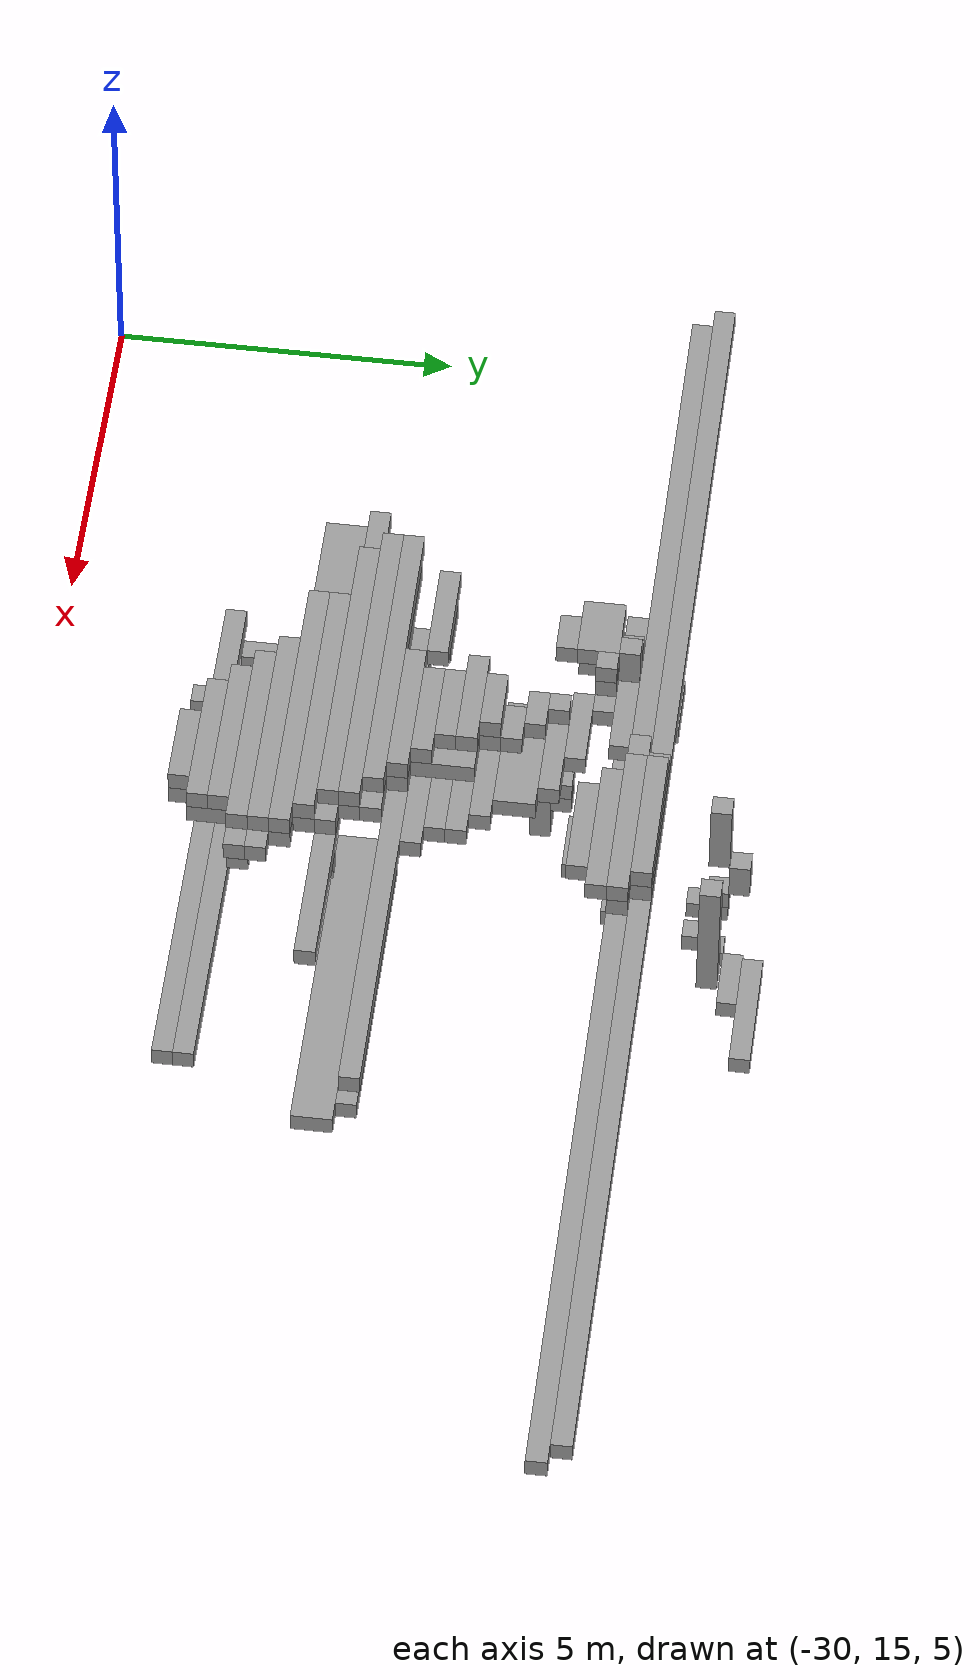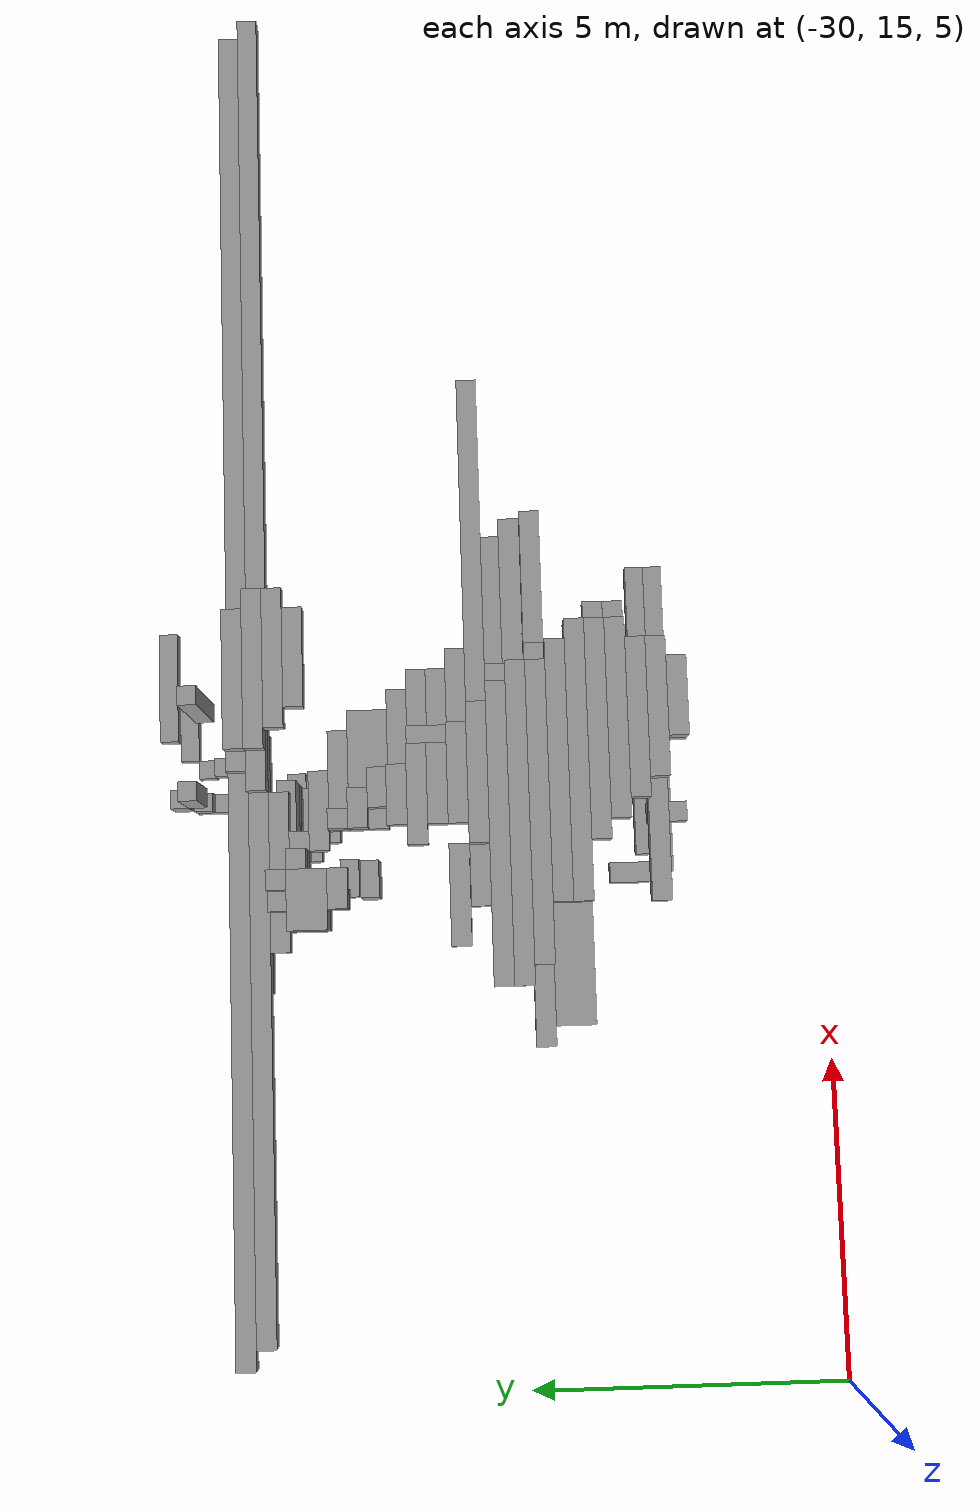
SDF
<sdf version="1.6">
 <world name="bt_world">
  <include><uri>model://sun</uri></include>
  <model name="obstacle_85">
   <static>true</static>
   <pose>-18.9 24.15 7.6499999999999995 0 0 0</pose>
   <link name="link">
    <collision name="collision"><geometry><box><size>20.4 0.3 0.3</size></box></geometry></collision>
    <visual name="visual">
     <geometry><box><size>20.4 0.3 0.3</size></box></geometry>
     <material><ambient>0.5 0.5 0.5 1</ambient><diffuse>0.6 0.6 0.6 1</diffuse></material>
    </visual>
   </link>
  </model>
  <model name="obstacle_109">
   <static>true</static>
   <pose>-18.599999999999998 23.849999999999998 7.6499999999999995 0 0 0</pose>
   <link name="link">
    <collision name="collision"><geometry><box><size>20.4 0.3 0.3</size></box></geometry></collision>
    <visual name="visual">
     <geometry><box><size>20.4 0.3 0.3</size></box></geometry>
     <material><ambient>0.5 0.5 0.5 1</ambient><diffuse>0.6 0.6 0.6 1</diffuse></material>
    </visual>
   </link>
  </model>
  <model name="obstacle_365">
   <static>true</static>
   <pose>-20.55 19.65 7.6499999999999995 0 0 0</pose>
   <link name="link">
    <collision name="collision"><geometry><box><size>8.1 0.3 0.3</size></box></geometry></collision>
    <visual name="visual">
     <geometry><box><size>8.1 0.3 0.3</size></box></geometry>
     <material><ambient>0.5 0.5 0.5 1</ambient><diffuse>0.6 0.6 0.6 1</diffuse></material>
    </visual>
   </link>
  </model>
  <model name="obstacle_397">
   <static>true</static>
   <pose>-21.9 19.2 7.6499999999999995 0 0 0</pose>
   <link name="link">
    <collision name="collision"><geometry><box><size>4.8 0.6 0.3</size></box></geometry></collision>
    <visual name="visual">
     <geometry><box><size>4.8 0.6 0.3</size></box></geometry>
     <material><ambient>0.5 0.5 0.5 1</ambient><diffuse>0.6 0.6 0.6 1</diffuse></material>
    </visual>
   </link>
  </model>
  <model name="obstacle_461">
   <static>true</static>
   <pose>-21.3 19.95 8.25 0 0 0</pose>
   <link name="link">
    <collision name="collision"><geometry><box><size>4.8 0.3 0.3</size></box></geometry></collision>
    <visual name="visual">
     <geometry><box><size>4.8 0.3 0.3</size></box></geometry>
     <material><ambient>0.5 0.5 0.5 1</ambient><diffuse>0.6 0.6 0.6 1</diffuse></material>
    </visual>
   </link>
  </model>
  <model name="obstacle_462">
   <static>true</static>
   <pose>-21.45 20.25 8.25 0 0 0</pose>
   <link name="link">
    <collision name="collision"><geometry><box><size>4.5 0.3 0.3</size></box></geometry></collision>
    <visual name="visual">
     <geometry><box><size>4.5 0.3 0.3</size></box></geometry>
     <material><ambient>0.5 0.5 0.5 1</ambient><diffuse>0.6 0.6 0.6 1</diffuse></material>
    </visual>
   </link>
  </model>
  <model name="obstacle_467">
   <static>true</static>
   <pose>-21.75 23.849999999999998 7.35 0 0 0</pose>
   <link name="link">
    <collision name="collision"><geometry><box><size>3.9 0.3 0.3</size></box></geometry></collision>
    <visual name="visual">
     <geometry><box><size>3.9 0.3 0.3</size></box></geometry>
     <material><ambient>0.5 0.5 0.5 1</ambient><diffuse>0.6 0.6 0.6 1</diffuse></material>
    </visual>
   </link>
  </model>
  <model name="obstacle_495">
   <static>true</static>
   <pose>-21.15 19.65 8.25 0 0 0</pose>
   <link name="link">
    <collision name="collision"><geometry><box><size>4.5 0.3 0.3</size></box></geometry></collision>
    <visual name="visual">
     <geometry><box><size>4.5 0.3 0.3</size></box></geometry>
     <material><ambient>0.5 0.5 0.5 1</ambient><diffuse>0.6 0.6 0.6 1</diffuse></material>
    </visual>
   </link>
  </model>
  <model name="obstacle_497">
   <static>true</static>
   <pose>-21.15 20.25 7.949999999999999 0 0 0</pose>
   <link name="link">
    <collision name="collision"><geometry><box><size>4.5 0.3 0.3</size></box></geometry></collision>
    <visual name="visual">
     <geometry><box><size>4.5 0.3 0.3</size></box></geometry>
     <material><ambient>0.5 0.5 0.5 1</ambient><diffuse>0.6 0.6 0.6 1</diffuse></material>
    </visual>
   </link>
  </model>
  <model name="obstacle_527">
   <static>true</static>
   <pose>-22.349999999999998 20.849999999999998 8.25 0 0 0</pose>
   <link name="link">
    <collision name="collision"><geometry><box><size>1.5 0.3 0.3</size></box></geometry></collision>
    <visual name="visual">
     <geometry><box><size>1.5 0.3 0.3</size></box></geometry>
     <material><ambient>0.5 0.5 0.5 1</ambient><diffuse>0.6 0.6 0.6 1</diffuse></material>
    </visual>
   </link>
  </model>
  <model name="obstacle_532">
   <static>true</static>
   <pose>-21.9 23.55 7.6499999999999995 0 0 0</pose>
   <link name="link">
    <collision name="collision"><geometry><box><size>2.4 0.3 0.3</size></box></geometry></collision>
    <visual name="visual">
     <geometry><box><size>2.4 0.3 0.3</size></box></geometry>
     <material><ambient>0.5 0.5 0.5 1</ambient><diffuse>0.6 0.6 0.6 1</diffuse></material>
    </visual>
   </link>
  </model>
  <model name="obstacle_561">
   <static>true</static>
   <pose>-22.349999999999998 20.849999999999998 7.949999999999999 0 0 0</pose>
   <link name="link">
    <collision name="collision">
     <geometry><box><size>0.8999999999999999 0.3 0.3</size></box></geometry>
    </collision>
    <visual name="visual">
     <geometry><box><size>0.8999999999999999 0.3 0.3</size></box></geometry>
     <material><ambient>0.5 0.5 0.5 1</ambient><diffuse>0.6 0.6 0.6 1</diffuse></material>
    </visual>
   </link>
  </model>
  <model name="obstacle_563">
   <static>true</static>
   <pose>-22.5 23.099999999999998 7.6499999999999995 0 0 0</pose>
   <link name="link">
    <collision name="collision"><geometry><box><size>0.6 0.6 0.3</size></box></geometry></collision>
    <visual name="visual">
     <geometry><box><size>0.6 0.6 0.3</size></box></geometry>
     <material><ambient>0.5 0.5 0.5 1</ambient><diffuse>0.6 0.6 0.6 1</diffuse></material>
    </visual>
   </link>
  </model>
  <model name="obstacle_564">
   <static>true</static>
   <pose>-22.349999999999998 23.099999999999998 8.25 0 0 0</pose>
   <link name="link">
    <collision name="collision">
     <geometry><box><size>0.8999999999999999 0.6 0.3</size></box></geometry>
    </collision>
    <visual name="visual">
     <geometry><box><size>0.8999999999999999 0.6 0.3</size></box></geometry>
     <material><ambient>0.5 0.5 0.5 1</ambient><diffuse>0.6 0.6 0.6 1</diffuse></material>
    </visual>
   </link>
  </model>
  <model name="obstacle_565">
   <static>true</static>
   <pose>-22.05 23.849999999999998 7.05 0 0 0</pose>
   <link name="link">
    <collision name="collision"><geometry><box><size>1.5 0.3 0.3</size></box></geometry></collision>
    <visual name="visual">
     <geometry><box><size>1.5 0.3 0.3</size></box></geometry>
     <material><ambient>0.5 0.5 0.5 1</ambient><diffuse>0.6 0.6 0.6 1</diffuse></material>
    </visual>
   </link>
  </model>
  <model name="obstacle_595">
   <static>true</static>
   <pose>-20.7 17.849999999999998 7.6499999999999995 0 0 0</pose>
   <link name="link">
    <collision name="collision">
     <geometry><box><size>3.5999999999999996 0.3 0.3</size></box></geometry>
    </collision>
    <visual name="visual">
     <geometry><box><size>3.5999999999999996 0.3 0.3</size></box></geometry>
     <material><ambient>0.5 0.5 0.5 1</ambient><diffuse>0.6 0.6 0.6 1</diffuse></material>
    </visual>
   </link>
  </model>
  <model name="obstacle_596">
   <static>true</static>
   <pose>-20.4 19.05 8.25 0 0 0</pose>
   <link name="link">
    <collision name="collision"><geometry><box><size>4.2 0.3 0.3</size></box></geometry></collision>
    <visual name="visual">
     <geometry><box><size>4.2 0.3 0.3</size></box></geometry>
     <material><ambient>0.5 0.5 0.5 1</ambient><diffuse>0.6 0.6 0.6 1</diffuse></material>
    </visual>
   </link>
  </model>
  <model name="obstacle_597">
   <static>true</static>
   <pose>-20.55 19.349999999999998 8.25 0 0 0</pose>
   <link name="link">
    <collision name="collision"><geometry><box><size>3.9 0.3 0.3</size></box></geometry></collision>
    <visual name="visual">
     <geometry><box><size>3.9 0.3 0.3</size></box></geometry>
     <material><ambient>0.5 0.5 0.5 1</ambient><diffuse>0.6 0.6 0.6 1</diffuse></material>
    </visual>
   </link>
  </model>
  <model name="obstacle_598">
   <static>true</static>
   <pose>-18.45 20.55 7.6499999999999995 0 0 0</pose>
   <link name="link">
    <collision name="collision"><geometry><box><size>8.1 0.3 0.3</size></box></geometry></collision>
    <visual name="visual">
     <geometry><box><size>8.1 0.3 0.3</size></box></geometry>
     <material><ambient>0.5 0.5 0.5 1</ambient><diffuse>0.6 0.6 0.6 1</diffuse></material>
    </visual>
   </link>
  </model>
  <model name="obstacle_599">
   <static>true</static>
   <pose>-22.349999999999998 23.099999999999998 7.949999999999999 0 0 0</pose>
   <link name="link">
    <collision name="collision"><geometry><box><size>0.3 1.2 0.3</size></box></geometry></collision>
    <visual name="visual">
     <geometry><box><size>0.3 1.2 0.3</size></box></geometry>
     <material><ambient>0.5 0.5 0.5 1</ambient><diffuse>0.6 0.6 0.6 1</diffuse></material>
    </visual>
   </link>
  </model>
  <model name="obstacle_600">
   <static>true</static>
   <pose>-22.2 22.65 8.25 0 0 0</pose>
   <link name="link">
    <collision name="collision"><geometry><box><size>0.6 0.3 0.3</size></box></geometry></collision>
    <visual name="visual">
     <geometry><box><size>0.6 0.3 0.3</size></box></geometry>
     <material><ambient>0.5 0.5 0.5 1</ambient><diffuse>0.6 0.6 0.6 1</diffuse></material>
    </visual>
   </link>
  </model>
  <model name="obstacle_601">
   <static>true</static>
   <pose>-21.45 23.55 5.85 0 0 0</pose>
   <link name="link">
    <collision name="collision"><geometry><box><size>2.1 0.3 0.3</size></box></geometry></collision>
    <visual name="visual">
     <geometry><box><size>2.1 0.3 0.3</size></box></geometry>
     <material><ambient>0.5 0.5 0.5 1</ambient><diffuse>0.6 0.6 0.6 1</diffuse></material>
    </visual>
   </link>
  </model>
  <model name="obstacle_602">
   <static>true</static>
   <pose>-22.349999999999998 23.55 6.1499999999999995 0 0 0</pose>
   <link name="link">
    <collision name="collision"><geometry><box><size>0.3 0.3 0.3</size></box></geometry></collision>
    <visual name="visual">
     <geometry><box><size>0.3 0.3 0.3</size></box></geometry>
     <material><ambient>0.5 0.5 0.5 1</ambient><diffuse>0.6 0.6 0.6 1</diffuse></material>
    </visual>
   </link>
  </model>
  <model name="obstacle_603">
   <static>true</static>
   <pose>-22.05 24.15 7.05 0 0 0</pose>
   <link name="link">
    <collision name="collision">
     <geometry><box><size>0.8999999999999999 0.3 0.3</size></box></geometry>
    </collision>
    <visual name="visual">
     <geometry><box><size>0.8999999999999999 0.3 0.3</size></box></geometry>
     <material><ambient>0.5 0.5 0.5 1</ambient><diffuse>0.6 0.6 0.6 1</diffuse></material>
    </visual>
   </link>
  </model>
  <model name="obstacle_659">
   <static>true</static>
   <pose>-22.05 18.3 7.35 0 0 0</pose>
   <link name="link">
    <collision name="collision"><geometry><box><size>0.3 0.6 0.3</size></box></geometry></collision>
    <visual name="visual">
     <geometry><box><size>0.3 0.6 0.3</size></box></geometry>
     <material><ambient>0.5 0.5 0.5 1</ambient><diffuse>0.6 0.6 0.6 1</diffuse></material>
    </visual>
   </link>
  </model>
  <model name="obstacle_660">
   <static>true</static>
   <pose>-22.05 19.5 7.35 0 0 0</pose>
   <link name="link">
    <collision name="collision"><geometry><box><size>0.3 0.6 0.3</size></box></geometry></collision>
    <visual name="visual">
     <geometry><box><size>0.3 0.6 0.3</size></box></geometry>
     <material><ambient>0.5 0.5 0.5 1</ambient><diffuse>0.6 0.6 0.6 1</diffuse></material>
    </visual>
   </link>
  </model>
  <model name="obstacle_661">
   <static>true</static>
   <pose>-21.9 22.349999999999998 4.95 0 0 0</pose>
   <link name="link">
    <collision name="collision">
     <geometry><box><size>0.6 0.3 0.8999999999999999</size></box></geometry>
    </collision>
    <visual name="visual">
     <geometry><box><size>0.6 0.3 0.8999999999999999</size></box></geometry>
     <material><ambient>0.5 0.5 0.5 1</ambient><diffuse>0.6 0.6 0.6 1</diffuse></material>
    </visual>
   </link>
  </model>
  <model name="obstacle_662">
   <static>true</static>
   <pose>-21.9 22.65 5.55 0 0 0</pose>
   <link name="link">
    <collision name="collision"><geometry><box><size>0.6 0.3 0.3</size></box></geometry></collision>
    <visual name="visual">
     <geometry><box><size>0.6 0.3 0.3</size></box></geometry>
     <material><ambient>0.5 0.5 0.5 1</ambient><diffuse>0.6 0.6 0.6 1</diffuse></material>
    </visual>
   </link>
  </model>
  <model name="obstacle_663">
   <static>true</static>
   <pose>-21.75 23.25 7.6499999999999995 0 0 0</pose>
   <link name="link">
    <collision name="collision">
     <geometry><box><size>0.8999999999999999 0.3 0.3</size></box></geometry>
    </collision>
    <visual name="visual">
     <geometry><box><size>0.8999999999999999 0.3 0.3</size></box></geometry>
     <material><ambient>0.5 0.5 0.5 1</ambient><diffuse>0.6 0.6 0.6 1</diffuse></material>
    </visual>
   </link>
  </model>
  <model name="obstacle_664">
   <static>true</static>
   <pose>-21.9 23.25 7.949999999999999 0 0 0</pose>
   <link name="link">
    <collision name="collision"><geometry><box><size>0.6 0.3 0.3</size></box></geometry></collision>
    <visual name="visual">
     <geometry><box><size>0.6 0.3 0.3</size></box></geometry>
     <material><ambient>0.5 0.5 0.5 1</ambient><diffuse>0.6 0.6 0.6 1</diffuse></material>
    </visual>
   </link>
  </model>
  <model name="obstacle_665">
   <static>true</static>
   <pose>-21.75 23.55 5.1 0 0 0</pose>
   <link name="link">
    <collision name="collision">
     <geometry><box><size>0.8999999999999999 0.3 1.2</size></box></geometry>
    </collision>
    <visual name="visual">
     <geometry><box><size>0.8999999999999999 0.3 1.2</size></box></geometry>
     <material><ambient>0.5 0.5 0.5 1</ambient><diffuse>0.6 0.6 0.6 1</diffuse></material>
    </visual>
   </link>
  </model>
  <model name="obstacle_666">
   <static>true</static>
   <pose>-22.05 23.55 8.1 0 0 0</pose>
   <link name="link">
    <collision name="collision"><geometry><box><size>0.3 0.3 0.6</size></box></geometry></collision>
    <visual name="visual">
     <geometry><box><size>0.3 0.3 0.6</size></box></geometry>
     <material><ambient>0.5 0.5 0.5 1</ambient><diffuse>0.6 0.6 0.6 1</diffuse></material>
    </visual>
   </link>
  </model>
  <model name="obstacle_703">
   <static>true</static>
   <pose>-19.349999999999998 17.55 4.6499999999999995 0 0 0</pose>
   <link name="link">
    <collision name="collision"><geometry><box><size>5.1 0.3 0.3</size></box></geometry></collision>
    <visual name="visual">
     <geometry><box><size>5.1 0.3 0.3</size></box></geometry>
     <material><ambient>0.5 0.5 0.5 1</ambient><diffuse>0.6 0.6 0.6 1</diffuse></material>
    </visual>
   </link>
  </model>
  <model name="obstacle_704">
   <static>true</static>
   <pose>-21.75 22.65 5.25 0 0 0</pose>
   <link name="link">
    <collision name="collision"><geometry><box><size>0.3 0.3 0.3</size></box></geometry></collision>
    <visual name="visual">
     <geometry><box><size>0.3 0.3 0.3</size></box></geometry>
     <material><ambient>0.5 0.5 0.5 1</ambient><diffuse>0.6 0.6 0.6 1</diffuse></material>
    </visual>
   </link>
  </model>
  <model name="obstacle_705">
   <static>true</static>
   <pose>-21.75 23.25 8.25 0 0 0</pose>
   <link name="link">
    <collision name="collision"><geometry><box><size>0.3 0.3 0.3</size></box></geometry></collision>
    <visual name="visual">
     <geometry><box><size>0.3 0.3 0.3</size></box></geometry>
     <material><ambient>0.5 0.5 0.5 1</ambient><diffuse>0.6 0.6 0.6 1</diffuse></material>
    </visual>
   </link>
  </model>
  <model name="obstacle_740">
   <static>true</static>
   <pose>-19.2 17.849999999999998 4.6499999999999995 0 0 0</pose>
   <link name="link">
    <collision name="collision"><geometry><box><size>4.8 0.3 0.3</size></box></geometry></collision>
    <visual name="visual">
     <geometry><box><size>4.8 0.3 0.3</size></box></geometry>
     <material><ambient>0.5 0.5 0.5 1</ambient><diffuse>0.6 0.6 0.6 1</diffuse></material>
    </visual>
   </link>
  </model>
  <model name="obstacle_741">
   <static>true</static>
   <pose>-19.95 18.75 8.25 0 0 0</pose>
   <link name="link">
    <collision name="collision"><geometry><box><size>3.3 0.3 0.3</size></box></geometry></collision>
    <visual name="visual">
     <geometry><box><size>3.3 0.3 0.3</size></box></geometry>
     <material><ambient>0.5 0.5 0.5 1</ambient><diffuse>0.6 0.6 0.6 1</diffuse></material>
    </visual>
   </link>
  </model>
  <model name="obstacle_742">
   <static>true</static>
   <pose>-21.3 20.25 7.35 0 0 0</pose>
   <link name="link">
    <collision name="collision"><geometry><box><size>0.6 0.3 0.3</size></box></geometry></collision>
    <visual name="visual">
     <geometry><box><size>0.6 0.3 0.3</size></box></geometry>
     <material><ambient>0.5 0.5 0.5 1</ambient><diffuse>0.6 0.6 0.6 1</diffuse></material>
    </visual>
   </link>
  </model>
  <model name="obstacle_743">
   <static>true</static>
   <pose>-20.55 20.55 8.25 0 0 0</pose>
   <link name="link">
    <collision name="collision"><geometry><box><size>2.1 0.3 0.3</size></box></geometry></collision>
    <visual name="visual">
     <geometry><box><size>2.1 0.3 0.3</size></box></geometry>
     <material><ambient>0.5 0.5 0.5 1</ambient><diffuse>0.6 0.6 0.6 1</diffuse></material>
    </visual>
   </link>
  </model>
  <model name="obstacle_744">
   <static>true</static>
   <pose>-20.849999999999998 21.45 8.25 0 0 0</pose>
   <link name="link">
    <collision name="collision"><geometry><box><size>1.5 0.3 0.3</size></box></geometry></collision>
    <visual name="visual">
     <geometry><box><size>1.5 0.3 0.3</size></box></geometry>
     <material><ambient>0.5 0.5 0.5 1</ambient><diffuse>0.6 0.6 0.6 1</diffuse></material>
    </visual>
   </link>
  </model>
  <model name="obstacle_745">
   <static>true</static>
   <pose>-21.0 22.95 7.6499999999999995 0 0 0</pose>
   <link name="link">
    <collision name="collision"><geometry><box><size>1.2 0.3 0.3</size></box></geometry></collision>
    <visual name="visual">
     <geometry><box><size>1.2 0.3 0.3</size></box></geometry>
     <material><ambient>0.5 0.5 0.5 1</ambient><diffuse>0.6 0.6 0.6 1</diffuse></material>
    </visual>
   </link>
  </model>
  <model name="obstacle_746">
   <static>true</static>
   <pose>-21.0 23.25 5.25 0 0 0</pose>
   <link name="link">
    <collision name="collision"><geometry><box><size>1.2 0.3 0.3</size></box></geometry></collision>
    <visual name="visual">
     <geometry><box><size>1.2 0.3 0.3</size></box></geometry>
     <material><ambient>0.5 0.5 0.5 1</ambient><diffuse>0.6 0.6 0.6 1</diffuse></material>
    </visual>
   </link>
  </model>
  <model name="obstacle_747">
   <static>true</static>
   <pose>-21.0 23.55 6.3 0 0 0</pose>
   <link name="link">
    <collision name="collision"><geometry><box><size>1.2 0.3 0.6</size></box></geometry></collision>
    <visual name="visual">
     <geometry><box><size>1.2 0.3 0.6</size></box></geometry>
     <material><ambient>0.5 0.5 0.5 1</ambient><diffuse>0.6 0.6 0.6 1</diffuse></material>
    </visual>
   </link>
  </model>
  <model name="obstacle_797">
   <static>true</static>
   <pose>-21.15 17.7 7.35 0 0 0</pose>
   <link name="link">
    <collision name="collision"><geometry><box><size>0.3 0.6 0.3</size></box></geometry></collision>
    <visual name="visual">
     <geometry><box><size>0.3 0.6 0.3</size></box></geometry>
     <material><ambient>0.5 0.5 0.5 1</ambient><diffuse>0.6 0.6 0.6 1</diffuse></material>
    </visual>
   </link>
  </model>
  <model name="obstacle_798">
   <static>true</static>
   <pose>-19.8 18.45 8.25 0 0 0</pose>
   <link name="link">
    <collision name="collision"><geometry><box><size>3.0 0.3 0.3</size></box></geometry></collision>
    <visual name="visual">
     <geometry><box><size>3.0 0.3 0.3</size></box></geometry>
     <material><ambient>0.5 0.5 0.5 1</ambient><diffuse>0.6 0.6 0.6 1</diffuse></material>
    </visual>
   </link>
  </model>
  <model name="obstacle_799">
   <static>true</static>
   <pose>-21.15 19.95 7.949999999999999 0 0 0</pose>
   <link name="link">
    <collision name="collision"><geometry><box><size>0.3 0.3 0.3</size></box></geometry></collision>
    <visual name="visual">
     <geometry><box><size>0.3 0.3 0.3</size></box></geometry>
     <material><ambient>0.5 0.5 0.5 1</ambient><diffuse>0.6 0.6 0.6 1</diffuse></material>
    </visual>
   </link>
  </model>
  <model name="obstacle_800">
   <static>true</static>
   <pose>-21.15 20.55 7.35 0 0 0</pose>
   <link name="link">
    <collision name="collision"><geometry><box><size>0.3 0.3 0.3</size></box></geometry></collision>
    <visual name="visual">
     <geometry><box><size>0.3 0.3 0.3</size></box></geometry>
     <material><ambient>0.5 0.5 0.5 1</ambient><diffuse>0.6 0.6 0.6 1</diffuse></material>
    </visual>
   </link>
  </model>
  <model name="obstacle_801">
   <static>true</static>
   <pose>-20.4 20.55 7.949999999999999 0 0 0</pose>
   <link name="link">
    <collision name="collision">
     <geometry><box><size>1.7999999999999998 0.3 0.3</size></box></geometry>
    </collision>
    <visual name="visual">
     <geometry><box><size>1.7999999999999998 0.3 0.3</size></box></geometry>
     <material><ambient>0.5 0.5 0.5 1</ambient><diffuse>0.6 0.6 0.6 1</diffuse></material>
    </visual>
   </link>
  </model>
  <model name="obstacle_802">
   <static>true</static>
   <pose>-20.55 20.849999999999998 8.25 0 0 0</pose>
   <link name="link">
    <collision name="collision"><geometry><box><size>1.5 0.3 0.3</size></box></geometry></collision>
    <visual name="visual">
     <geometry><box><size>1.5 0.3 0.3</size></box></geometry>
     <material><ambient>0.5 0.5 0.5 1</ambient><diffuse>0.6 0.6 0.6 1</diffuse></material>
    </visual>
   </link>
  </model>
  <model name="obstacle_803">
   <static>true</static>
   <pose>-20.7 21.15 8.25 0 0 0</pose>
   <link name="link">
    <collision name="collision"><geometry><box><size>1.2 0.3 0.3</size></box></geometry></collision>
    <visual name="visual">
     <geometry><box><size>1.2 0.3 0.3</size></box></geometry>
     <material><ambient>0.5 0.5 0.5 1</ambient><diffuse>0.6 0.6 0.6 1</diffuse></material>
    </visual>
   </link>
  </model>
  <model name="obstacle_804">
   <static>true</static>
   <pose>-20.849999999999998 21.75 8.25 0 0 0</pose>
   <link name="link">
    <collision name="collision">
     <geometry><box><size>0.8999999999999999 0.3 0.3</size></box></geometry>
    </collision>
    <visual name="visual">
     <geometry><box><size>0.8999999999999999 0.3 0.3</size></box></geometry>
     <material><ambient>0.5 0.5 0.5 1</ambient><diffuse>0.6 0.6 0.6 1</diffuse></material>
    </visual>
   </link>
  </model>
  <model name="obstacle_805">
   <static>true</static>
   <pose>-20.4 22.2 7.6499999999999995 0 0 0</pose>
   <link name="link">
    <collision name="collision">
     <geometry><box><size>1.7999999999999998 0.6 0.3</size></box></geometry>
    </collision>
    <visual name="visual">
     <geometry><box><size>1.7999999999999998 0.6 0.3</size></box></geometry>
     <material><ambient>0.5 0.5 0.5 1</ambient><diffuse>0.6 0.6 0.6 1</diffuse></material>
    </visual>
   </link>
  </model>
  <model name="obstacle_806">
   <static>true</static>
   <pose>-21.0 22.349999999999998 7.949999999999999 0 0 0</pose>
   <link name="link">
    <collision name="collision"><geometry><box><size>0.6 0.3 0.3</size></box></geometry></collision>
    <visual name="visual">
     <geometry><box><size>0.6 0.3 0.3</size></box></geometry>
     <material><ambient>0.5 0.5 0.5 1</ambient><diffuse>0.6 0.6 0.6 1</diffuse></material>
    </visual>
   </link>
  </model>
  <model name="obstacle_807">
   <static>true</static>
   <pose>-20.55 22.65 7.6499999999999995 0 0 0</pose>
   <link name="link">
    <collision name="collision"><geometry><box><size>1.5 0.3 0.3</size></box></geometry></collision>
    <visual name="visual">
     <geometry><box><size>1.5 0.3 0.3</size></box></geometry>
     <material><ambient>0.5 0.5 0.5 1</ambient><diffuse>0.6 0.6 0.6 1</diffuse></material>
    </visual>
   </link>
  </model>
  <model name="obstacle_808">
   <static>true</static>
   <pose>-21.15 22.65 7.949999999999999 0 0 0</pose>
   <link name="link">
    <collision name="collision"><geometry><box><size>0.3 0.3 0.3</size></box></geometry></collision>
    <visual name="visual">
     <geometry><box><size>0.3 0.3 0.3</size></box></geometry>
     <material><ambient>0.5 0.5 0.5 1</ambient><diffuse>0.6 0.6 0.6 1</diffuse></material>
    </visual>
   </link>
  </model>
  <model name="obstacle_809">
   <static>true</static>
   <pose>-20.849999999999998 22.95 5.25 0 0 0</pose>
   <link name="link">
    <collision name="collision">
     <geometry><box><size>0.8999999999999999 0.3 0.3</size></box></geometry>
    </collision>
    <visual name="visual">
     <geometry><box><size>0.8999999999999999 0.3 0.3</size></box></geometry>
     <material><ambient>0.5 0.5 0.5 1</ambient><diffuse>0.6 0.6 0.6 1</diffuse></material>
    </visual>
   </link>
  </model>
  <model name="obstacle_810">
   <static>true</static>
   <pose>-21.15 23.55 5.25 0 0 0</pose>
   <link name="link">
    <collision name="collision">
     <geometry><box><size>0.3 0.3 0.8999999999999999</size></box></geometry>
    </collision>
    <visual name="visual">
     <geometry><box><size>0.3 0.3 0.8999999999999999</size></box></geometry>
     <material><ambient>0.5 0.5 0.5 1</ambient><diffuse>0.6 0.6 0.6 1</diffuse></material>
    </visual>
   </link>
  </model>
  <model name="obstacle_845">
   <static>true</static>
   <pose>-19.8 18.15 8.25 0 0 0</pose>
   <link name="link">
    <collision name="collision"><geometry><box><size>2.4 0.3 0.3</size></box></geometry></collision>
    <visual name="visual">
     <geometry><box><size>2.4 0.3 0.3</size></box></geometry>
     <material><ambient>0.5 0.5 0.5 1</ambient><diffuse>0.6 0.6 0.6 1</diffuse></material>
    </visual>
   </link>
  </model>
  <model name="obstacle_846">
   <static>true</static>
   <pose>-20.849999999999998 18.45 7.35 0 0 0</pose>
   <link name="link">
    <collision name="collision"><geometry><box><size>0.3 0.3 0.3</size></box></geometry></collision>
    <visual name="visual">
     <geometry><box><size>0.3 0.3 0.3</size></box></geometry>
     <material><ambient>0.5 0.5 0.5 1</ambient><diffuse>0.6 0.6 0.6 1</diffuse></material>
    </visual>
   </link>
  </model>
  <model name="obstacle_847">
   <static>true</static>
   <pose>-19.5 18.75 7.949999999999999 0 0 0</pose>
   <link name="link">
    <collision name="collision"><geometry><box><size>3.0 0.3 0.3</size></box></geometry></collision>
    <visual name="visual">
     <geometry><box><size>3.0 0.3 0.3</size></box></geometry>
     <material><ambient>0.5 0.5 0.5 1</ambient><diffuse>0.6 0.6 0.6 1</diffuse></material>
    </visual>
   </link>
  </model>
  <model name="obstacle_848">
   <static>true</static>
   <pose>-19.65 19.05 7.949999999999999 0 0 0</pose>
   <link name="link">
    <collision name="collision">
     <geometry><box><size>2.6999999999999997 0.3 0.3</size></box></geometry>
    </collision>
    <visual name="visual">
     <geometry><box><size>2.6999999999999997 0.3 0.3</size></box></geometry>
     <material><ambient>0.5 0.5 0.5 1</ambient><diffuse>0.6 0.6 0.6 1</diffuse></material>
    </visual>
   </link>
  </model>
  <model name="obstacle_849">
   <static>true</static>
   <pose>-19.8 19.349999999999998 7.949999999999999 0 0 0</pose>
   <link name="link">
    <collision name="collision"><geometry><box><size>2.4 0.3 0.3</size></box></geometry></collision>
    <visual name="visual">
     <geometry><box><size>2.4 0.3 0.3</size></box></geometry>
     <material><ambient>0.5 0.5 0.5 1</ambient><diffuse>0.6 0.6 0.6 1</diffuse></material>
    </visual>
   </link>
  </model>
  <model name="obstacle_850">
   <static>true</static>
   <pose>-18.45 19.8 4.6499999999999995 0 0 0</pose>
   <link name="link">
    <collision name="collision"><geometry><box><size>5.1 0.6 0.3</size></box></geometry></collision>
    <visual name="visual">
     <geometry><box><size>5.1 0.6 0.3</size></box></geometry>
     <material><ambient>0.5 0.5 0.5 1</ambient><diffuse>0.6 0.6 0.6 1</diffuse></material>
    </visual>
   </link>
  </model>
  <model name="obstacle_851">
   <static>true</static>
   <pose>-20.849999999999998 19.65 7.35 0 0 0</pose>
   <link name="link">
    <collision name="collision"><geometry><box><size>0.3 0.3 0.3</size></box></geometry></collision>
    <visual name="visual">
     <geometry><box><size>0.3 0.3 0.3</size></box></geometry>
     <material><ambient>0.5 0.5 0.5 1</ambient><diffuse>0.6 0.6 0.6 1</diffuse></material>
    </visual>
   </link>
  </model>
  <model name="obstacle_852">
   <static>true</static>
   <pose>-20.7 22.05 7.949999999999999 0 0 0</pose>
   <link name="link">
    <collision name="collision"><geometry><box><size>0.6 0.3 0.3</size></box></geometry></collision>
    <visual name="visual">
     <geometry><box><size>0.6 0.3 0.3</size></box></geometry>
     <material><ambient>0.5 0.5 0.5 1</ambient><diffuse>0.6 0.6 0.6 1</diffuse></material>
    </visual>
   </link>
  </model>
  <model name="obstacle_853">
   <static>true</static>
   <pose>-20.849999999999998 23.25 4.95 0 0 0</pose>
   <link name="link">
    <collision name="collision"><geometry><box><size>0.3 0.3 0.3</size></box></geometry></collision>
    <visual name="visual">
     <geometry><box><size>0.3 0.3 0.3</size></box></geometry>
     <material><ambient>0.5 0.5 0.5 1</ambient><diffuse>0.6 0.6 0.6 1</diffuse></material>
    </visual>
   </link>
  </model>
  <model name="obstacle_854">
   <static>true</static>
   <pose>-20.7 23.55 5.55 0 0 0</pose>
   <link name="link">
    <collision name="collision"><geometry><box><size>0.6 0.3 0.3</size></box></geometry></collision>
    <visual name="visual">
     <geometry><box><size>0.6 0.3 0.3</size></box></geometry>
     <material><ambient>0.5 0.5 0.5 1</ambient><diffuse>0.6 0.6 0.6 1</diffuse></material>
    </visual>
   </link>
  </model>
  <model name="obstacle_898">
   <static>true</static>
   <pose>-19.65 17.849999999999998 8.25 0 0 0</pose>
   <link name="link">
    <collision name="collision"><geometry><box><size>2.1 0.3 0.3</size></box></geometry></collision>
    <visual name="visual">
     <geometry><box><size>2.1 0.3 0.3</size></box></geometry>
     <material><ambient>0.5 0.5 0.5 1</ambient><diffuse>0.6 0.6 0.6 1</diffuse></material>
    </visual>
   </link>
  </model>
  <model name="obstacle_899">
   <static>true</static>
   <pose>-19.349999999999998 18.45 7.949999999999999 0 0 0</pose>
   <link name="link">
    <collision name="collision">
     <geometry><box><size>2.6999999999999997 0.3 0.3</size></box></geometry>
    </collision>
    <visual name="visual">
     <geometry><box><size>2.6999999999999997 0.3 0.3</size></box></geometry>
     <material><ambient>0.5 0.5 0.5 1</ambient><diffuse>0.6 0.6 0.6 1</diffuse></material>
    </visual>
   </link>
  </model>
  <model name="obstacle_900">
   <static>true</static>
   <pose>-19.65 19.65 7.949999999999999 0 0 0</pose>
   <link name="link">
    <collision name="collision"><geometry><box><size>2.1 0.3 0.3</size></box></geometry></collision>
    <visual name="visual">
     <geometry><box><size>2.1 0.3 0.3</size></box></geometry>
     <material><ambient>0.5 0.5 0.5 1</ambient><diffuse>0.6 0.6 0.6 1</diffuse></material>
    </visual>
   </link>
  </model>
  <model name="obstacle_901">
   <static>true</static>
   <pose>-18.45 20.25 4.6499999999999995 0 0 0</pose>
   <link name="link">
    <collision name="collision"><geometry><box><size>4.5 0.3 0.3</size></box></geometry></collision>
    <visual name="visual">
     <geometry><box><size>4.5 0.3 0.3</size></box></geometry>
     <material><ambient>0.5 0.5 0.5 1</ambient><diffuse>0.6 0.6 0.6 1</diffuse></material>
    </visual>
   </link>
  </model>
  <model name="obstacle_902">
   <static>true</static>
   <pose>-20.4 20.25 7.5 0 0 0</pose>
   <link name="link">
    <collision name="collision"><geometry><box><size>0.6 0.3 0.6</size></box></geometry></collision>
    <visual name="visual">
     <geometry><box><size>0.6 0.3 0.6</size></box></geometry>
     <material><ambient>0.5 0.5 0.5 1</ambient><diffuse>0.6 0.6 0.6 1</diffuse></material>
    </visual>
   </link>
  </model>
  <model name="obstacle_903">
   <static>true</static>
   <pose>-20.25 21.15 7.949999999999999 0 0 0</pose>
   <link name="link">
    <collision name="collision">
     <geometry><box><size>0.8999999999999999 0.8999999999999999 0.3</size></box></geometry>
    </collision>
    <visual name="visual">
     <geometry><box><size>0.8999999999999999 0.8999999999999999 0.3</size></box></geometry>
     <material><ambient>0.5 0.5 0.5 1</ambient><diffuse>0.6 0.6 0.6 1</diffuse></material>
    </visual>
   </link>
  </model>
  <model name="obstacle_904">
   <static>true</static>
   <pose>-19.8 21.45 7.6499999999999995 0 0 0</pose>
   <link name="link">
    <collision name="collision">
     <geometry><box><size>1.7999999999999998 0.3 0.3</size></box></geometry>
    </collision>
    <visual name="visual">
     <geometry><box><size>1.7999999999999998 0.3 0.3</size></box></geometry>
     <material><ambient>0.5 0.5 0.5 1</ambient><diffuse>0.6 0.6 0.6 1</diffuse></material>
    </visual>
   </link>
  </model>
  <model name="obstacle_905">
   <static>true</static>
   <pose>-19.95 21.75 7.6499999999999995 0 0 0</pose>
   <link name="link">
    <collision name="collision"><geometry><box><size>1.5 0.3 0.3</size></box></geometry></collision>
    <visual name="visual">
     <geometry><box><size>1.5 0.3 0.3</size></box></geometry>
     <material><ambient>0.5 0.5 0.5 1</ambient><diffuse>0.6 0.6 0.6 1</diffuse></material>
    </visual>
   </link>
  </model>
  <model name="obstacle_906">
   <static>true</static>
   <pose>-20.55 21.75 7.949999999999999 0 0 0</pose>
   <link name="link">
    <collision name="collision"><geometry><box><size>0.3 0.3 0.3</size></box></geometry></collision>
    <visual name="visual">
     <geometry><box><size>0.3 0.3 0.3</size></box></geometry>
     <material><ambient>0.5 0.5 0.5 1</ambient><diffuse>0.6 0.6 0.6 1</diffuse></material>
    </visual>
   </link>
  </model>
  <model name="obstacle_907">
   <static>true</static>
   <pose>-20.4 23.55 4.6499999999999995 0 0 0</pose>
   <link name="link">
    <collision name="collision"><geometry><box><size>0.6 0.3 0.3</size></box></geometry></collision>
    <visual name="visual">
     <geometry><box><size>0.6 0.3 0.3</size></box></geometry>
     <material><ambient>0.5 0.5 0.5 1</ambient><diffuse>0.6 0.6 0.6 1</diffuse></material>
    </visual>
   </link>
  </model>
  <model name="obstacle_908">
   <static>true</static>
   <pose>-20.55 23.55 5.1 0 0 0</pose>
   <link name="link">
    <collision name="collision"><geometry><box><size>0.3 0.3 0.6</size></box></geometry></collision>
    <visual name="visual">
     <geometry><box><size>0.3 0.3 0.6</size></box></geometry>
     <material><ambient>0.5 0.5 0.5 1</ambient><diffuse>0.6 0.6 0.6 1</diffuse></material>
    </visual>
   </link>
  </model>
  <model name="obstacle_909">
   <static>true</static>
   <pose>-19.2 23.849999999999998 7.949999999999999 0 0 0</pose>
   <link name="link">
    <collision name="collision"><geometry><box><size>3.0 0.3 0.3</size></box></geometry></collision>
    <visual name="visual">
     <geometry><box><size>3.0 0.3 0.3</size></box></geometry>
     <material><ambient>0.5 0.5 0.5 1</ambient><diffuse>0.6 0.6 0.6 1</diffuse></material>
    </visual>
   </link>
  </model>
  <model name="obstacle_910">
   <static>true</static>
   <pose>-20.55 24.9 4.6499999999999995 0 0 0</pose>
   <link name="link">
    <collision name="collision"><geometry><box><size>0.3 0.6 0.3</size></box></geometry></collision>
    <visual name="visual">
     <geometry><box><size>0.3 0.6 0.3</size></box></geometry>
     <material><ambient>0.5 0.5 0.5 1</ambient><diffuse>0.6 0.6 0.6 1</diffuse></material>
    </visual>
   </link>
  </model>
  <model name="obstacle_911">
   <static>true</static>
   <pose>-20.55 25.05 4.95 0 0 0</pose>
   <link name="link">
    <collision name="collision"><geometry><box><size>0.3 0.3 0.3</size></box></geometry></collision>
    <visual name="visual">
     <geometry><box><size>0.3 0.3 0.3</size></box></geometry>
     <material><ambient>0.5 0.5 0.5 1</ambient><diffuse>0.6 0.6 0.6 1</diffuse></material>
    </visual>
   </link>
  </model>
  <model name="obstacle_912">
   <static>true</static>
   <pose>-20.55 25.05 6.3 0 0 0</pose>
   <link name="link">
    <collision name="collision"><geometry><box><size>0.3 0.3 1.2</size></box></geometry></collision>
    <visual name="visual">
     <geometry><box><size>0.3 0.3 1.2</size></box></geometry>
     <material><ambient>0.5 0.5 0.5 1</ambient><diffuse>0.6 0.6 0.6 1</diffuse></material>
    </visual>
   </link>
  </model>
  <model name="obstacle_913">
   <static>true</static>
   <pose>-20.55 25.349999999999998 5.3999999999999995 0 0 0</pose>
   <link name="link">
    <collision name="collision"><geometry><box><size>0.3 0.3 0.6</size></box></geometry></collision>
    <visual name="visual">
     <geometry><box><size>0.3 0.3 0.6</size></box></geometry>
     <material><ambient>0.5 0.5 0.5 1</ambient><diffuse>0.6 0.6 0.6 1</diffuse></material>
    </visual>
   </link>
  </model>
  <model name="obstacle_940">
   <static>true</static>
   <pose>-19.65 21.15 7.6499999999999995 0 0 0</pose>
   <link name="link">
    <collision name="collision"><geometry><box><size>1.5 0.3 0.3</size></box></geometry></collision>
    <visual name="visual">
     <geometry><box><size>1.5 0.3 0.3</size></box></geometry>
     <material><ambient>0.5 0.5 0.5 1</ambient><diffuse>0.6 0.6 0.6 1</diffuse></material>
    </visual>
   </link>
  </model>
  <model name="obstacle_941">
   <static>true</static>
   <pose>-19.2 24.15 7.949999999999999 0 0 0</pose>
   <link name="link">
    <collision name="collision"><geometry><box><size>2.4 0.3 0.3</size></box></geometry></collision>
    <visual name="visual">
     <geometry><box><size>2.4 0.3 0.3</size></box></geometry>
     <material><ambient>0.5 0.5 0.5 1</ambient><diffuse>0.6 0.6 0.6 1</diffuse></material>
    </visual>
   </link>
  </model>
  <model name="obstacle_969">
   <static>true</static>
   <pose>-19.5 17.849999999999998 7.949999999999999 0 0 0</pose>
   <link name="link">
    <collision name="collision">
     <geometry><box><size>1.2 0.8999999999999999 0.3</size></box></geometry>
    </collision>
    <visual name="visual">
     <geometry><box><size>1.2 0.8999999999999999 0.3</size></box></geometry>
     <material><ambient>0.5 0.5 0.5 1</ambient><diffuse>0.6 0.6 0.6 1</diffuse></material>
    </visual>
   </link>
  </model>
  <model name="obstacle_970">
   <static>true</static>
   <pose>-19.5 17.55 8.25 0 0 0</pose>
   <link name="link">
    <collision name="collision"><geometry><box><size>1.2 0.3 0.3</size></box></geometry></collision>
    <visual name="visual">
     <geometry><box><size>1.2 0.3 0.3</size></box></geometry>
     <material><ambient>0.5 0.5 0.5 1</ambient><diffuse>0.6 0.6 0.6 1</diffuse></material>
    </visual>
   </link>
  </model>
  <model name="obstacle_972">
   <static>true</static>
   <pose>-19.349999999999998 20.849999999999998 7.6499999999999995 0 0 0</pose>
   <link name="link">
    <collision name="collision"><geometry><box><size>1.5 0.3 0.3</size></box></geometry></collision>
    <visual name="visual">
     <geometry><box><size>1.5 0.3 0.3</size></box></geometry>
     <material><ambient>0.5 0.5 0.5 1</ambient><diffuse>0.6 0.6 0.6 1</diffuse></material>
    </visual>
   </link>
  </model>
  <model name="obstacle_973">
   <static>true</static>
   <pose>-18.9 23.849999999999998 8.25 0 0 0</pose>
   <link name="link">
    <collision name="collision"><geometry><box><size>2.4 0.3 0.3</size></box></geometry></collision>
    <visual name="visual">
     <geometry><box><size>2.4 0.3 0.3</size></box></geometry>
     <material><ambient>0.5 0.5 0.5 1</ambient><diffuse>0.6 0.6 0.6 1</diffuse></material>
    </visual>
   </link>
  </model>
  <model name="obstacle_974">
   <static>true</static>
   <pose>-19.05 24.15 8.25 0 0 0</pose>
   <link name="link">
    <collision name="collision"><geometry><box><size>2.1 0.3 0.3</size></box></geometry></collision>
    <visual name="visual">
     <geometry><box><size>2.1 0.3 0.3</size></box></geometry>
     <material><ambient>0.5 0.5 0.5 1</ambient><diffuse>0.6 0.6 0.6 1</diffuse></material>
    </visual>
   </link>
  </model>
  <model name="obstacle_975">
   <static>true</static>
   <pose>-19.95 24.75 4.6499999999999995 0 0 0</pose>
   <link name="link">
    <collision name="collision"><geometry><box><size>0.3 0.3 0.3</size></box></geometry></collision>
    <visual name="visual">
     <geometry><box><size>0.3 0.3 0.3</size></box></geometry>
     <material><ambient>0.5 0.5 0.5 1</ambient><diffuse>0.6 0.6 0.6 1</diffuse></material>
    </visual>
   </link>
  </model>
  <model name="obstacle_976">
   <static>true</static>
   <pose>-19.95 25.05 4.35 0 0 0</pose>
   <link name="link">
    <collision name="collision"><geometry><box><size>0.3 0.3 0.3</size></box></geometry></collision>
    <visual name="visual">
     <geometry><box><size>0.3 0.3 0.3</size></box></geometry>
     <material><ambient>0.5 0.5 0.5 1</ambient><diffuse>0.6 0.6 0.6 1</diffuse></material>
    </visual>
   </link>
  </model>
  <model name="obstacle_993">
   <static>true</static>
   <pose>-19.65 18.45 7.35 0 0 0</pose>
   <link name="link">
    <collision name="collision"><geometry><box><size>0.3 0.3 0.3</size></box></geometry></collision>
    <visual name="visual">
     <geometry><box><size>0.3 0.3 0.3</size></box></geometry>
     <material><ambient>0.5 0.5 0.5 1</ambient><diffuse>0.6 0.6 0.6 1</diffuse></material>
    </visual>
   </link>
  </model>
  <model name="obstacle_994">
   <static>true</static>
   <pose>-19.65 19.65 7.35 0 0 0</pose>
   <link name="link">
    <collision name="collision"><geometry><box><size>0.3 0.3 0.3</size></box></geometry></collision>
    <visual name="visual">
     <geometry><box><size>0.3 0.3 0.3</size></box></geometry>
     <material><ambient>0.5 0.5 0.5 1</ambient><diffuse>0.6 0.6 0.6 1</diffuse></material>
    </visual>
   </link>
  </model>
  <model name="obstacle_995">
   <static>true</static>
   <pose>-19.349999999999998 19.95 7.949999999999999 0 0 0</pose>
   <link name="link">
    <collision name="collision">
     <geometry><box><size>0.8999999999999999 0.3 0.3</size></box></geometry>
    </collision>
    <visual name="visual">
     <geometry><box><size>0.8999999999999999 0.3 0.3</size></box></geometry>
     <material><ambient>0.5 0.5 0.5 1</ambient><diffuse>0.6 0.6 0.6 1</diffuse></material>
    </visual>
   </link>
  </model>
  <model name="obstacle_996">
   <static>true</static>
   <pose>-18.75 23.55 8.25 0 0 0</pose>
   <link name="link">
    <collision name="collision"><geometry><box><size>2.1 0.3 0.3</size></box></geometry></collision>
    <visual name="visual">
     <geometry><box><size>2.1 0.3 0.3</size></box></geometry>
     <material><ambient>0.5 0.5 0.5 1</ambient><diffuse>0.6 0.6 0.6 1</diffuse></material>
    </visual>
   </link>
  </model>
  <model name="obstacle_997">
   <static>true</static>
   <pose>-19.349999999999998 25.349999999999998 4.35 0 0 0</pose>
   <link name="link">
    <collision name="collision">
     <geometry><box><size>0.8999999999999999 0.3 0.3</size></box></geometry>
    </collision>
    <visual name="visual">
     <geometry><box><size>0.8999999999999999 0.3 0.3</size></box></geometry>
     <material><ambient>0.5 0.5 0.5 1</ambient><diffuse>0.6 0.6 0.6 1</diffuse></material>
    </visual>
   </link>
  </model>
  <model name="obstacle_1007">
   <static>true</static>
   <pose>-18.75 23.25 8.25 0 0 0</pose>
   <link name="link">
    <collision name="collision"><geometry><box><size>1.5 0.3 0.3</size></box></geometry></collision>
    <visual name="visual">
     <geometry><box><size>1.5 0.3 0.3</size></box></geometry>
     <material><ambient>0.5 0.5 0.5 1</ambient><diffuse>0.6 0.6 0.6 1</diffuse></material>
    </visual>
   </link>
  </model>
  <model name="obstacle_1008">
   <static>true</static>
   <pose>-18.599999999999998 25.65 4.6499999999999995 0 0 0</pose>
   <link name="link">
    <collision name="collision">
     <geometry><box><size>1.7999999999999998 0.3 0.3</size></box></geometry>
    </collision>
    <visual name="visual">
     <geometry><box><size>1.7999999999999998 0.3 0.3</size></box></geometry>
     <material><ambient>0.5 0.5 0.5 1</ambient><diffuse>0.6 0.6 0.6 1</diffuse></material>
    </visual>
   </link>
  </model>
  <model name="obstacle_1025">
   <static>true</static>
   <pose>-19.05 23.849999999999998 7.35 0 0 0</pose>
   <link name="link">
    <collision name="collision"><geometry><box><size>0.3 0.3 0.3</size></box></geometry></collision>
    <visual name="visual">
     <geometry><box><size>0.3 0.3 0.3</size></box></geometry>
     <material><ambient>0.5 0.5 0.5 1</ambient><diffuse>0.6 0.6 0.6 1</diffuse></material>
    </visual>
   </link>
  </model>
  <model name="obstacle_1026">
   <static>true</static>
   <pose>-19.05 25.05 5.85 0 0 0</pose>
   <link name="link">
    <collision name="collision"><geometry><box><size>0.3 0.3 2.1</size></box></geometry></collision>
    <visual name="visual">
     <geometry><box><size>0.3 0.3 2.1</size></box></geometry>
     <material><ambient>0.5 0.5 0.5 1</ambient><diffuse>0.6 0.6 0.6 1</diffuse></material>
    </visual>
   </link>
  </model>
  <model name="obstacle_1031">
   <static>true</static>
   <pose>-18.75 18.0 7.949999999999999 0 0 0</pose>
   <link name="link">
    <collision name="collision"><geometry><box><size>0.3 0.6 0.3</size></box></geometry></collision>
    <visual name="visual">
     <geometry><box><size>0.3 0.6 0.3</size></box></geometry>
     <material><ambient>0.5 0.5 0.5 1</ambient><diffuse>0.6 0.6 0.6 1</diffuse></material>
    </visual>
   </link>
  </model>
  <model name="obstacle_1049">
   <static>true</static>
   <pose>-18.45 18.45 7.35 0 0 0</pose>
   <link name="link">
    <collision name="collision"><geometry><box><size>0.3 0.3 0.3</size></box></geometry></collision>
    <visual name="visual">
     <geometry><box><size>0.3 0.3 0.3</size></box></geometry>
     <material><ambient>0.5 0.5 0.5 1</ambient><diffuse>0.6 0.6 0.6 1</diffuse></material>
    </visual>
   </link>
  </model>
  <model name="obstacle_1051">
   <static>true</static>
   <pose>-18.45 19.65 7.35 0 0 0</pose>
   <link name="link">
    <collision name="collision"><geometry><box><size>0.3 0.3 0.3</size></box></geometry></collision>
    <visual name="visual">
     <geometry><box><size>0.3 0.3 0.3</size></box></geometry>
     <material><ambient>0.5 0.5 0.5 1</ambient><diffuse>0.6 0.6 0.6 1</diffuse></material>
    </visual>
   </link>
  </model>
 </world>
</sdf>
